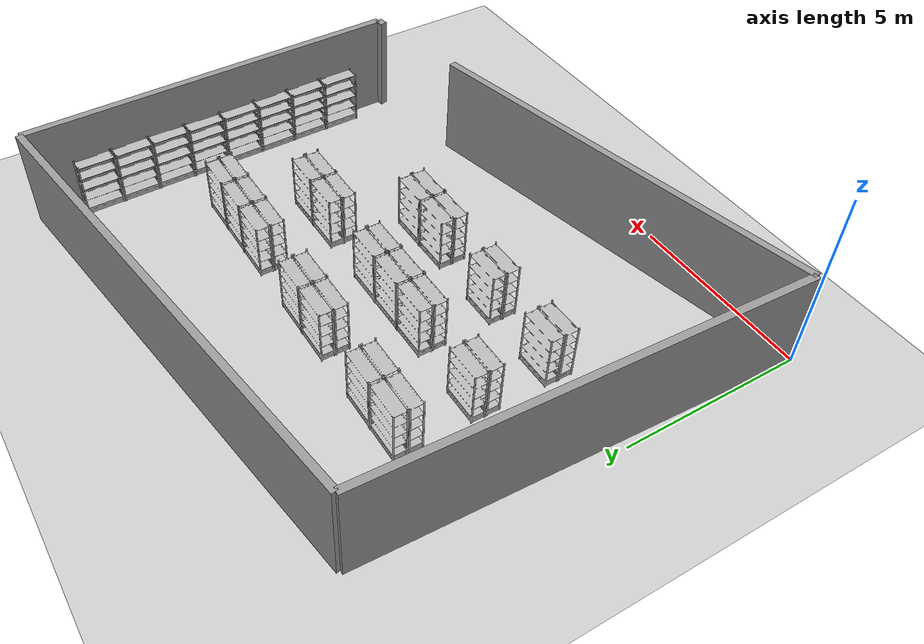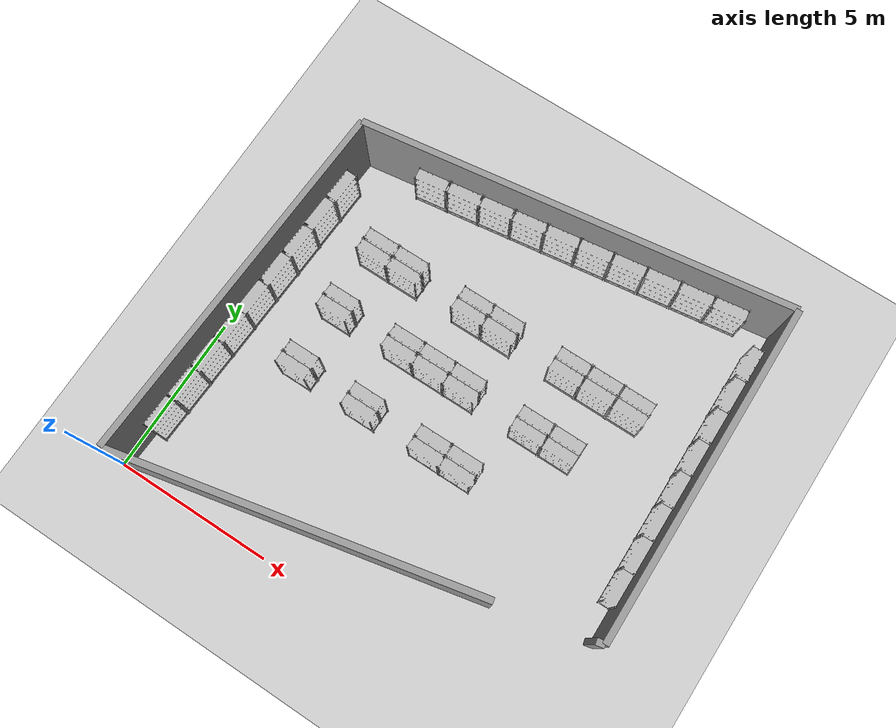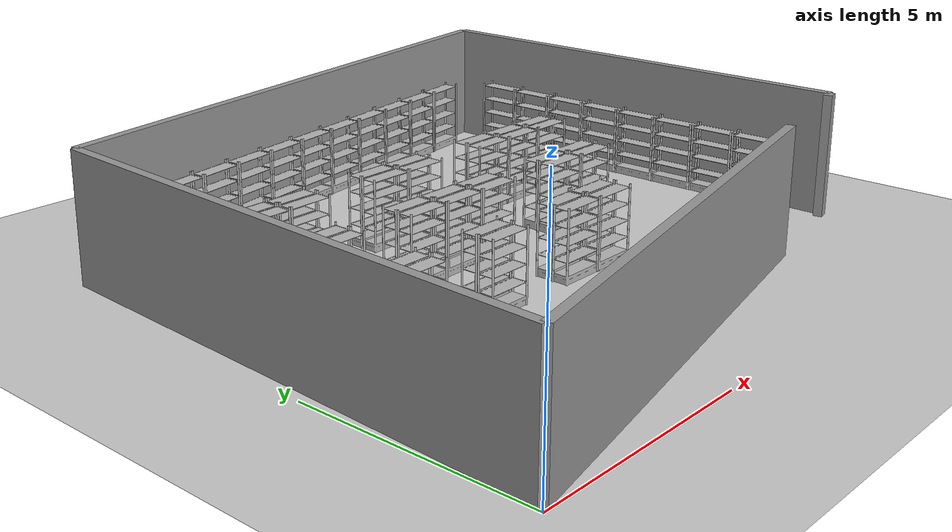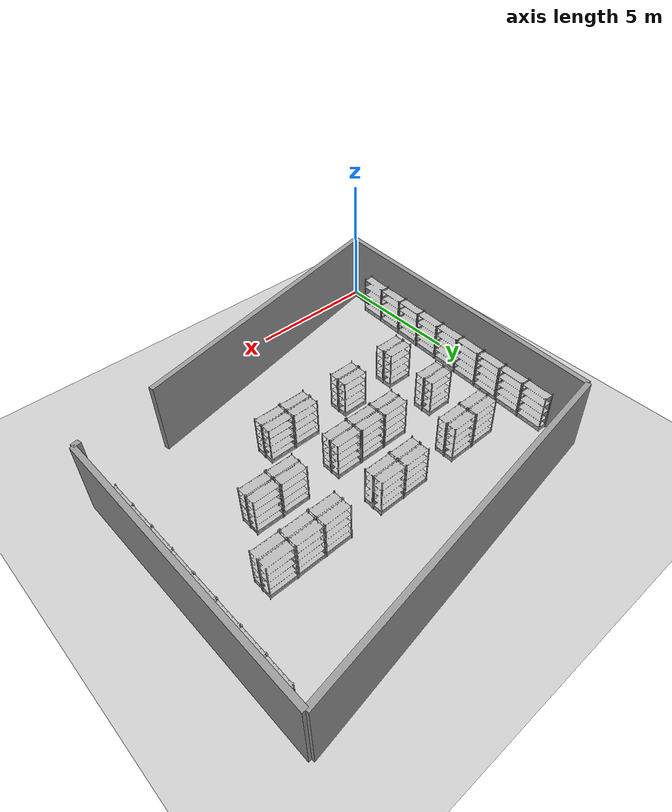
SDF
<sdf version="1.6">
 <world name="default">
  <model name="ground_plane">
   <static>1</static>
   <link name="link">
    <collision name="collision">
     <geometry><plane><normal>0 0 1</normal><size>100 100</size></plane></geometry>
     <surface>
      <contact><collide_bitmask>65535</collide_bitmask></contact>
      <friction><ode><mu>1000</mu><mu2>1000</mu2></ode></friction>
     </surface>
    </collision>
    <visual name="visual">
     <cast_shadows>0</cast_shadows>
     <geometry><plane><normal>0 0 1</normal><size>100 100</size></plane></geometry>
     <material>
      <script><uri>file://media/materials/scripts/gazebo.material</uri><name>Gazebo/Grey</name></script>
     </material>
    </visual>
   </link>
  </model>
  <model name="store_shelf_moduled_0">
   <link name="link">
    <collision name="collision">
     <geometry><mesh><uri>model://store_shelf_moduled/meshes/store_shelf_moduled.dae</uri></mesh></geometry>
    </collision>
    <visual name="visual">
     <geometry><mesh><uri>model://store_shelf_moduled/meshes/store_shelf_moduled.dae</uri></mesh></geometry>
    </visual>
    <inertial>
     <mass>1000</mass>
     <inertia>
      <ixx>840083</ixx>
      <ixy>0</ixy>
      <ixz>0</ixz>
      <iyy>475500</iyy>
      <iyz>0</iyz>
      <izz>1.30208e+06</izz>
     </inertia>
    </inertial>
   </link>
   <static>1</static>
   <pose>14.01001 4.158587 0 0 0 1.58492</pose>
  </model>
  <model name="store_shelf_moduled_1">
   <link name="link">
    <collision name="collision">
     <geometry><mesh><uri>model://store_shelf_moduled/meshes/store_shelf_moduled.dae</uri></mesh></geometry>
    </collision>
    <visual name="visual">
     <geometry><mesh><uri>model://store_shelf_moduled/meshes/store_shelf_moduled.dae</uri></mesh></geometry>
    </visual>
    <inertial>
     <mass>1000</mass>
     <inertia>
      <ixx>840083</ixx>
      <ixy>0</ixy>
      <ixz>0</ixz>
      <iyy>475500</iyy>
      <iyz>0</iyz>
      <izz>1.30208e+06</izz>
     </inertia>
    </inertial>
   </link>
   <static>1</static>
   <pose>14.00001 5.218588 0 0 0 1.58492</pose>
  </model>
  <model name="store_shelf_moduled_2">
   <link name="link">
    <collision name="collision">
     <geometry><mesh><uri>model://store_shelf_moduled/meshes/store_shelf_moduled.dae</uri></mesh></geometry>
    </collision>
    <visual name="visual">
     <geometry><mesh><uri>model://store_shelf_moduled/meshes/store_shelf_moduled.dae</uri></mesh></geometry>
    </visual>
    <inertial>
     <mass>1000</mass>
     <inertia>
      <ixx>840083</ixx>
      <ixy>0</ixy>
      <ixz>0</ixz>
      <iyy>475500</iyy>
      <iyz>0</iyz>
      <izz>1.30208e+06</izz>
     </inertia>
    </inertial>
   </link>
   <static>1</static>
   <pose>13.98001 6.278588 0 0 0 1.58492</pose>
  </model>
  <model name="store_shelf_moduled_3">
   <link name="link">
    <collision name="collision">
     <geometry><mesh><uri>model://store_shelf_moduled/meshes/store_shelf_moduled.dae</uri></mesh></geometry>
    </collision>
    <visual name="visual">
     <geometry><mesh><uri>model://store_shelf_moduled/meshes/store_shelf_moduled.dae</uri></mesh></geometry>
    </visual>
    <inertial>
     <mass>1000</mass>
     <inertia>
      <ixx>840083</ixx>
      <ixy>0</ixy>
      <ixz>0</ixz>
      <iyy>475500</iyy>
      <iyz>0</iyz>
      <izz>1.30208e+06</izz>
     </inertia>
    </inertial>
   </link>
   <static>1</static>
   <pose>13.97001 7.338588 0 0 0 1.58492</pose>
  </model>
  <model name="store_shelf_moduled_4">
   <link name="link">
    <collision name="collision">
     <geometry><mesh><uri>model://store_shelf_moduled/meshes/store_shelf_moduled.dae</uri></mesh></geometry>
    </collision>
    <visual name="visual">
     <geometry><mesh><uri>model://store_shelf_moduled/meshes/store_shelf_moduled.dae</uri></mesh></geometry>
    </visual>
    <inertial>
     <mass>1000</mass>
     <inertia>
      <ixx>840083</ixx>
      <ixy>0</ixy>
      <ixz>0</ixz>
      <iyy>475500</iyy>
      <iyz>0</iyz>
      <izz>1.30208e+06</izz>
     </inertia>
    </inertial>
   </link>
   <static>1</static>
   <pose>13.95001 8.398587 0 0 0 1.58492</pose>
  </model>
  <model name="store_shelf_moduled_5">
   <link name="link">
    <collision name="collision">
     <geometry><mesh><uri>model://store_shelf_moduled/meshes/store_shelf_moduled.dae</uri></mesh></geometry>
    </collision>
    <visual name="visual">
     <geometry><mesh><uri>model://store_shelf_moduled/meshes/store_shelf_moduled.dae</uri></mesh></geometry>
    </visual>
    <inertial>
     <mass>1000</mass>
     <inertia>
      <ixx>840083</ixx>
      <ixy>0</ixy>
      <ixz>0</ixz>
      <iyy>475500</iyy>
      <iyz>0</iyz>
      <izz>1.30208e+06</izz>
     </inertia>
    </inertial>
   </link>
   <static>1</static>
   <pose>13.94001 9.458588 0 0 0 1.58492</pose>
  </model>
  <model name="store_shelf_moduled_6">
   <link name="link">
    <collision name="collision">
     <geometry><mesh><uri>model://store_shelf_moduled/meshes/store_shelf_moduled.dae</uri></mesh></geometry>
    </collision>
    <visual name="visual">
     <geometry><mesh><uri>model://store_shelf_moduled/meshes/store_shelf_moduled.dae</uri></mesh></geometry>
    </visual>
    <inertial>
     <mass>1000</mass>
     <inertia>
      <ixx>840083</ixx>
      <ixy>0</ixy>
      <ixz>0</ixz>
      <iyy>475500</iyy>
      <iyz>0</iyz>
      <izz>1.30208e+06</izz>
     </inertia>
    </inertial>
   </link>
   <static>1</static>
   <pose>13.92001 10.51859 0 0 0 1.58492</pose>
  </model>
  <model name="store_shelf_moduled_7">
   <link name="link">
    <collision name="collision">
     <geometry><mesh><uri>model://store_shelf_moduled/meshes/store_shelf_moduled.dae</uri></mesh></geometry>
    </collision>
    <visual name="visual">
     <geometry><mesh><uri>model://store_shelf_moduled/meshes/store_shelf_moduled.dae</uri></mesh></geometry>
    </visual>
    <inertial>
     <mass>1000</mass>
     <inertia>
      <ixx>840083</ixx>
      <ixy>0</ixy>
      <ixz>0</ixz>
      <iyy>475500</iyy>
      <iyz>0</iyz>
      <izz>1.30208e+06</izz>
     </inertia>
    </inertial>
   </link>
   <static>1</static>
   <pose>13.91001 11.57859 0 0 0 1.58492</pose>
  </model>
  <model name="store_shelf_moduled_8">
   <link name="link">
    <collision name="collision">
     <geometry><mesh><uri>model://store_shelf_moduled/meshes/store_shelf_moduled.dae</uri></mesh></geometry>
    </collision>
    <visual name="visual">
     <geometry><mesh><uri>model://store_shelf_moduled/meshes/store_shelf_moduled.dae</uri></mesh></geometry>
    </visual>
    <inertial>
     <mass>1000</mass>
     <inertia>
      <ixx>840083</ixx>
      <ixy>0</ixy>
      <ixz>0</ixz>
      <iyy>475500</iyy>
      <iyz>0</iyz>
      <izz>1.30208e+06</izz>
     </inertia>
    </inertial>
   </link>
   <static>1</static>
   <pose>12.94407 13.481 0 0 0 -3.000429</pose>
  </model>
  <model name="store_shelf_moduled_9">
   <link name="link">
    <collision name="collision">
     <geometry><mesh><uri>model://store_shelf_moduled/meshes/store_shelf_moduled.dae</uri></mesh></geometry>
    </collision>
    <visual name="visual">
     <geometry><mesh><uri>model://store_shelf_moduled/meshes/store_shelf_moduled.dae</uri></mesh></geometry>
    </visual>
    <inertial>
     <mass>1000</mass>
     <inertia>
      <ixx>840083</ixx>
      <ixy>0</ixy>
      <ixz>0</ixz>
      <iyy>475500</iyy>
      <iyz>0</iyz>
      <izz>1.30208e+06</izz>
     </inertia>
    </inertial>
   </link>
   <static>1</static>
   <pose>11.89407 13.33099 0 0 0 -3.000429</pose>
  </model>
  <model name="store_shelf_moduled_10">
   <link name="link">
    <collision name="collision">
     <geometry><mesh><uri>model://store_shelf_moduled/meshes/store_shelf_moduled.dae</uri></mesh></geometry>
    </collision>
    <visual name="visual">
     <geometry><mesh><uri>model://store_shelf_moduled/meshes/store_shelf_moduled.dae</uri></mesh></geometry>
    </visual>
    <inertial>
     <mass>1000</mass>
     <inertia>
      <ixx>840083</ixx>
      <ixy>0</ixy>
      <ixz>0</ixz>
      <iyy>475500</iyy>
      <iyz>0</iyz>
      <izz>1.30208e+06</izz>
     </inertia>
    </inertial>
   </link>
   <static>1</static>
   <pose>10.84407 13.18099 0 0 0 -3.000429</pose>
  </model>
  <model name="store_shelf_moduled_11">
   <link name="link">
    <collision name="collision">
     <geometry><mesh><uri>model://store_shelf_moduled/meshes/store_shelf_moduled.dae</uri></mesh></geometry>
    </collision>
    <visual name="visual">
     <geometry><mesh><uri>model://store_shelf_moduled/meshes/store_shelf_moduled.dae</uri></mesh></geometry>
    </visual>
    <inertial>
     <mass>1000</mass>
     <inertia>
      <ixx>840083</ixx>
      <ixy>0</ixy>
      <ixz>0</ixz>
      <iyy>475500</iyy>
      <iyz>0</iyz>
      <izz>1.30208e+06</izz>
     </inertia>
    </inertial>
   </link>
   <static>1</static>
   <pose>9.79407 13.03099 0 0 0 -3.000429</pose>
  </model>
  <model name="store_shelf_moduled_12">
   <link name="link">
    <collision name="collision">
     <geometry><mesh><uri>model://store_shelf_moduled/meshes/store_shelf_moduled.dae</uri></mesh></geometry>
    </collision>
    <visual name="visual">
     <geometry><mesh><uri>model://store_shelf_moduled/meshes/store_shelf_moduled.dae</uri></mesh></geometry>
    </visual>
    <inertial>
     <mass>1000</mass>
     <inertia>
      <ixx>840083</ixx>
      <ixy>0</ixy>
      <ixz>0</ixz>
      <iyy>475500</iyy>
      <iyz>0</iyz>
      <izz>1.30208e+06</izz>
     </inertia>
    </inertial>
   </link>
   <static>1</static>
   <pose>8.74407 12.88099 0 0 0 -3.000429</pose>
  </model>
  <model name="store_shelf_moduled_13">
   <link name="link">
    <collision name="collision">
     <geometry><mesh><uri>model://store_shelf_moduled/meshes/store_shelf_moduled.dae</uri></mesh></geometry>
    </collision>
    <visual name="visual">
     <geometry><mesh><uri>model://store_shelf_moduled/meshes/store_shelf_moduled.dae</uri></mesh></geometry>
    </visual>
    <inertial>
     <mass>1000</mass>
     <inertia>
      <ixx>840083</ixx>
      <ixy>0</ixy>
      <ixz>0</ixz>
      <iyy>475500</iyy>
      <iyz>0</iyz>
      <izz>1.30208e+06</izz>
     </inertia>
    </inertial>
   </link>
   <static>1</static>
   <pose>7.69407 12.731 0 0 0 -3.000429</pose>
  </model>
  <model name="store_shelf_moduled_14">
   <link name="link">
    <collision name="collision">
     <geometry><mesh><uri>model://store_shelf_moduled/meshes/store_shelf_moduled.dae</uri></mesh></geometry>
    </collision>
    <visual name="visual">
     <geometry><mesh><uri>model://store_shelf_moduled/meshes/store_shelf_moduled.dae</uri></mesh></geometry>
    </visual>
    <inertial>
     <mass>1000</mass>
     <inertia>
      <ixx>840083</ixx>
      <ixy>0</ixy>
      <ixz>0</ixz>
      <iyy>475500</iyy>
      <iyz>0</iyz>
      <izz>1.30208e+06</izz>
     </inertia>
    </inertial>
   </link>
   <static>1</static>
   <pose>6.64407 12.58099 0 0 0 -3.000429</pose>
  </model>
  <model name="store_shelf_moduled_15">
   <link name="link">
    <collision name="collision">
     <geometry><mesh><uri>model://store_shelf_moduled/meshes/store_shelf_moduled.dae</uri></mesh></geometry>
    </collision>
    <visual name="visual">
     <geometry><mesh><uri>model://store_shelf_moduled/meshes/store_shelf_moduled.dae</uri></mesh></geometry>
    </visual>
    <inertial>
     <mass>1000</mass>
     <inertia>
      <ixx>840083</ixx>
      <ixy>0</ixy>
      <ixz>0</ixz>
      <iyy>475500</iyy>
      <iyz>0</iyz>
      <izz>1.30208e+06</izz>
     </inertia>
    </inertial>
   </link>
   <static>1</static>
   <pose>5.59407 12.43099 0 0 0 -3.000429</pose>
  </model>
  <model name="store_shelf_moduled_16">
   <link name="link">
    <collision name="collision">
     <geometry><mesh><uri>model://store_shelf_moduled/meshes/store_shelf_moduled.dae</uri></mesh></geometry>
    </collision>
    <visual name="visual">
     <geometry><mesh><uri>model://store_shelf_moduled/meshes/store_shelf_moduled.dae</uri></mesh></geometry>
    </visual>
    <inertial>
     <mass>1000</mass>
     <inertia>
      <ixx>840083</ixx>
      <ixy>0</ixy>
      <ixz>0</ixz>
      <iyy>475500</iyy>
      <iyz>0</iyz>
      <izz>1.30208e+06</izz>
     </inertia>
    </inertial>
   </link>
   <static>1</static>
   <pose>4.544069 12.28099 0 0 0 -3.000429</pose>
  </model>
  <model name="store_shelf_moduled_17">
   <link name="link">
    <collision name="collision">
     <geometry><mesh><uri>model://store_shelf_moduled/meshes/store_shelf_moduled.dae</uri></mesh></geometry>
    </collision>
    <visual name="visual">
     <geometry><mesh><uri>model://store_shelf_moduled/meshes/store_shelf_moduled.dae</uri></mesh></geometry>
    </visual>
    <inertial>
     <mass>1000</mass>
     <inertia>
      <ixx>840083</ixx>
      <ixy>0</ixy>
      <ixz>0</ixz>
      <iyy>475500</iyy>
      <iyz>0</iyz>
      <izz>1.30208e+06</izz>
     </inertia>
    </inertial>
   </link>
   <static>1</static>
   <pose>3.49407 12.13099 0 0 0 -3.000429</pose>
  </model>
  <model name="store_shelf_moduled_18">
   <link name="link">
    <collision name="collision">
     <geometry><mesh><uri>model://store_shelf_moduled/meshes/store_shelf_moduled.dae</uri></mesh></geometry>
    </collision>
    <visual name="visual">
     <geometry><mesh><uri>model://store_shelf_moduled/meshes/store_shelf_moduled.dae</uri></mesh></geometry>
    </visual>
    <inertial>
     <mass>1000</mass>
     <inertia>
      <ixx>840083</ixx>
      <ixy>0</ixy>
      <ixz>0</ixz>
      <iyy>475500</iyy>
      <iyz>0</iyz>
      <izz>1.30208e+06</izz>
     </inertia>
    </inertial>
   </link>
   <static>1</static>
   <pose>0.6599056 10.76566 0 0 0 -1.614247</pose>
  </model>
  <model name="store_shelf_moduled_19">
   <link name="link">
    <collision name="collision">
     <geometry><mesh><uri>model://store_shelf_moduled/meshes/store_shelf_moduled.dae</uri></mesh></geometry>
    </collision>
    <visual name="visual">
     <geometry><mesh><uri>model://store_shelf_moduled/meshes/store_shelf_moduled.dae</uri></mesh></geometry>
    </visual>
    <inertial>
     <mass>1000</mass>
     <inertia>
      <ixx>840083</ixx>
      <ixy>0</ixy>
      <ixz>0</ixz>
      <iyy>475500</iyy>
      <iyz>0</iyz>
      <izz>1.30208e+06</izz>
     </inertia>
    </inertial>
   </link>
   <static>1</static>
   <pose>0.6099056 9.705656 0 0 0 -1.614247</pose>
  </model>
  <model name="store_shelf_moduled_20">
   <link name="link">
    <collision name="collision">
     <geometry><mesh><uri>model://store_shelf_moduled/meshes/store_shelf_moduled.dae</uri></mesh></geometry>
    </collision>
    <visual name="visual">
     <geometry><mesh><uri>model://store_shelf_moduled/meshes/store_shelf_moduled.dae</uri></mesh></geometry>
    </visual>
    <inertial>
     <mass>1000</mass>
     <inertia>
      <ixx>840083</ixx>
      <ixy>0</ixy>
      <ixz>0</ixz>
      <iyy>475500</iyy>
      <iyz>0</iyz>
      <izz>1.30208e+06</izz>
     </inertia>
    </inertial>
   </link>
   <static>1</static>
   <pose>0.5699056 8.645657 0 0 0 -1.614247</pose>
  </model>
  <model name="store_shelf_moduled_21">
   <link name="link">
    <collision name="collision">
     <geometry><mesh><uri>model://store_shelf_moduled/meshes/store_shelf_moduled.dae</uri></mesh></geometry>
    </collision>
    <visual name="visual">
     <geometry><mesh><uri>model://store_shelf_moduled/meshes/store_shelf_moduled.dae</uri></mesh></geometry>
    </visual>
    <inertial>
     <mass>1000</mass>
     <inertia>
      <ixx>840083</ixx>
      <ixy>0</ixy>
      <ixz>0</ixz>
      <iyy>475500</iyy>
      <iyz>0</iyz>
      <izz>1.30208e+06</izz>
     </inertia>
    </inertial>
   </link>
   <static>1</static>
   <pose>0.5199056 7.585656 0 0 0 -1.614247</pose>
  </model>
  <model name="store_shelf_moduled_22">
   <link name="link">
    <collision name="collision">
     <geometry><mesh><uri>model://store_shelf_moduled/meshes/store_shelf_moduled.dae</uri></mesh></geometry>
    </collision>
    <visual name="visual">
     <geometry><mesh><uri>model://store_shelf_moduled/meshes/store_shelf_moduled.dae</uri></mesh></geometry>
    </visual>
    <inertial>
     <mass>1000</mass>
     <inertia>
      <ixx>840083</ixx>
      <ixy>0</ixy>
      <ixz>0</ixz>
      <iyy>475500</iyy>
      <iyz>0</iyz>
      <izz>1.30208e+06</izz>
     </inertia>
    </inertial>
   </link>
   <static>1</static>
   <pose>0.4699056 6.525656 0 0 0 -1.614247</pose>
  </model>
  <model name="store_shelf_moduled_23">
   <link name="link">
    <collision name="collision">
     <geometry><mesh><uri>model://store_shelf_moduled/meshes/store_shelf_moduled.dae</uri></mesh></geometry>
    </collision>
    <visual name="visual">
     <geometry><mesh><uri>model://store_shelf_moduled/meshes/store_shelf_moduled.dae</uri></mesh></geometry>
    </visual>
    <inertial>
     <mass>1000</mass>
     <inertia>
      <ixx>840083</ixx>
      <ixy>0</ixy>
      <ixz>0</ixz>
      <iyy>475500</iyy>
      <iyz>0</iyz>
      <izz>1.30208e+06</izz>
     </inertia>
    </inertial>
   </link>
   <static>1</static>
   <pose>0.4299056 5.465656 0 0 0 -1.614247</pose>
  </model>
  <model name="store_shelf_moduled_24">
   <link name="link">
    <collision name="collision">
     <geometry><mesh><uri>model://store_shelf_moduled/meshes/store_shelf_moduled.dae</uri></mesh></geometry>
    </collision>
    <visual name="visual">
     <geometry><mesh><uri>model://store_shelf_moduled/meshes/store_shelf_moduled.dae</uri></mesh></geometry>
    </visual>
    <inertial>
     <mass>1000</mass>
     <inertia>
      <ixx>840083</ixx>
      <ixy>0</ixy>
      <ixz>0</ixz>
      <iyy>475500</iyy>
      <iyz>0</iyz>
      <izz>1.30208e+06</izz>
     </inertia>
    </inertial>
   </link>
   <static>1</static>
   <pose>0.3799056 4.405656 0 0 0 -1.614247</pose>
  </model>
  <model name="store_shelf_moduled_25">
   <link name="link">
    <collision name="collision">
     <geometry><mesh><uri>model://store_shelf_moduled/meshes/store_shelf_moduled.dae</uri></mesh></geometry>
    </collision>
    <visual name="visual">
     <geometry><mesh><uri>model://store_shelf_moduled/meshes/store_shelf_moduled.dae</uri></mesh></geometry>
    </visual>
    <inertial>
     <mass>1000</mass>
     <inertia>
      <ixx>840083</ixx>
      <ixy>0</ixy>
      <ixz>0</ixz>
      <iyy>475500</iyy>
      <iyz>0</iyz>
      <izz>1.30208e+06</izz>
     </inertia>
    </inertial>
   </link>
   <static>1</static>
   <pose>0.3399056 3.345656 0 0 0 -1.614247</pose>
  </model>
  <model name="store_shelf_moduled_26">
   <link name="link">
    <collision name="collision">
     <geometry><mesh><uri>model://store_shelf_moduled/meshes/store_shelf_moduled.dae</uri></mesh></geometry>
    </collision>
    <visual name="visual">
     <geometry><mesh><uri>model://store_shelf_moduled/meshes/store_shelf_moduled.dae</uri></mesh></geometry>
    </visual>
    <inertial>
     <mass>1000</mass>
     <inertia>
      <ixx>840083</ixx>
      <ixy>0</ixy>
      <ixz>0</ixz>
      <iyy>475500</iyy>
      <iyz>0</iyz>
      <izz>1.30208e+06</izz>
     </inertia>
    </inertial>
   </link>
   <static>1</static>
   <pose>0.2899056 2.285656 0 0 0 -1.614247</pose>
  </model>
  <model name="store_shelf_moduled_27">
   <link name="link">
    <collision name="collision">
     <geometry><mesh><uri>model://store_shelf_moduled/meshes/store_shelf_moduled.dae</uri></mesh></geometry>
    </collision>
    <visual name="visual">
     <geometry><mesh><uri>model://store_shelf_moduled/meshes/store_shelf_moduled.dae</uri></mesh></geometry>
    </visual>
    <inertial>
     <mass>1000</mass>
     <inertia>
      <ixx>840083</ixx>
      <ixy>0</ixy>
      <ixz>0</ixz>
      <iyy>475500</iyy>
      <iyz>0</iyz>
      <izz>1.30208e+06</izz>
     </inertia>
    </inertial>
   </link>
   <static>1</static>
   <pose>4.54 5.14 0 0 0 0</pose>
  </model>
  <model name="store_shelf_moduled_28">
   <link name="link">
    <collision name="collision">
     <geometry><mesh><uri>model://store_shelf_moduled/meshes/store_shelf_moduled.dae</uri></mesh></geometry>
    </collision>
    <visual name="visual">
     <geometry><mesh><uri>model://store_shelf_moduled/meshes/store_shelf_moduled.dae</uri></mesh></geometry>
    </visual>
    <inertial>
     <mass>1000</mass>
     <inertia>
      <ixx>840083</ixx>
      <ixy>0</ixy>
      <ixz>0</ixz>
      <iyy>475500</iyy>
      <iyz>0</iyz>
      <izz>1.30208e+06</izz>
     </inertia>
    </inertial>
   </link>
   <static>1</static>
   <pose>5.6 5.14 0 0 0 -3.141593</pose>
  </model>
  <model name="store_shelf_moduled_29">
   <link name="link">
    <collision name="collision">
     <geometry><mesh><uri>model://store_shelf_moduled/meshes/store_shelf_moduled.dae</uri></mesh></geometry>
    </collision>
    <visual name="visual">
     <geometry><mesh><uri>model://store_shelf_moduled/meshes/store_shelf_moduled.dae</uri></mesh></geometry>
    </visual>
    <inertial>
     <mass>1000</mass>
     <inertia>
      <ixx>840083</ixx>
      <ixy>0</ixy>
      <ixz>0</ixz>
      <iyy>475500</iyy>
      <iyz>0</iyz>
      <izz>1.30208e+06</izz>
     </inertia>
    </inertial>
   </link>
   <static>1</static>
   <pose>8.92 7.18 0 0 0 0</pose>
  </model>
  <model name="store_shelf_moduled_30">
   <link name="link">
    <collision name="collision">
     <geometry><mesh><uri>model://store_shelf_moduled/meshes/store_shelf_moduled.dae</uri></mesh></geometry>
    </collision>
    <visual name="visual">
     <geometry><mesh><uri>model://store_shelf_moduled/meshes/store_shelf_moduled.dae</uri></mesh></geometry>
    </visual>
    <inertial>
     <mass>1000</mass>
     <inertia>
      <ixx>840083</ixx>
      <ixy>0</ixy>
      <ixz>0</ixz>
      <iyy>475500</iyy>
      <iyz>0</iyz>
      <izz>1.30208e+06</izz>
     </inertia>
    </inertial>
   </link>
   <static>1</static>
   <pose>9.98 7.18 0 0 0 -3.141593</pose>
  </model>
  <model name="store_shelf_moduled_31">
   <link name="link">
    <collision name="collision">
     <geometry><mesh><uri>model://store_shelf_moduled/meshes/store_shelf_moduled.dae</uri></mesh></geometry>
    </collision>
    <visual name="visual">
     <geometry><mesh><uri>model://store_shelf_moduled/meshes/store_shelf_moduled.dae</uri></mesh></geometry>
    </visual>
    <inertial>
     <mass>1000</mass>
     <inertia>
      <ixx>840083</ixx>
      <ixy>0</ixy>
      <ixz>0</ixz>
      <iyy>475500</iyy>
      <iyz>0</iyz>
      <izz>1.30208e+06</izz>
     </inertia>
    </inertial>
   </link>
   <static>1</static>
   <pose>9.98 7.18 0 0 0 0</pose>
  </model>
  <model name="store_shelf_moduled_32">
   <link name="link">
    <collision name="collision">
     <geometry><mesh><uri>model://store_shelf_moduled/meshes/store_shelf_moduled.dae</uri></mesh></geometry>
    </collision>
    <visual name="visual">
     <geometry><mesh><uri>model://store_shelf_moduled/meshes/store_shelf_moduled.dae</uri></mesh></geometry>
    </visual>
    <inertial>
     <mass>1000</mass>
     <inertia>
      <ixx>840083</ixx>
      <ixy>0</ixy>
      <ixz>0</ixz>
      <iyy>475500</iyy>
      <iyz>0</iyz>
      <izz>1.30208e+06</izz>
     </inertia>
    </inertial>
   </link>
   <static>1</static>
   <pose>11.04 7.18 0 0 0 -3.141593</pose>
  </model>
  <model name="store_shelf_moduled_33">
   <link name="link">
    <collision name="collision">
     <geometry><mesh><uri>model://store_shelf_moduled/meshes/store_shelf_moduled.dae</uri></mesh></geometry>
    </collision>
    <visual name="visual">
     <geometry><mesh><uri>model://store_shelf_moduled/meshes/store_shelf_moduled.dae</uri></mesh></geometry>
    </visual>
    <inertial>
     <mass>1000</mass>
     <inertia>
      <ixx>840083</ixx>
      <ixy>0</ixy>
      <ixz>0</ixz>
      <iyy>475500</iyy>
      <iyz>0</iyz>
      <izz>1.30208e+06</izz>
     </inertia>
    </inertial>
   </link>
   <static>1</static>
   <pose>2.28 5.14 0 0 0 0</pose>
  </model>
  <model name="store_shelf_moduled_34">
   <link name="link">
    <collision name="collision">
     <geometry><mesh><uri>model://store_shelf_moduled/meshes/store_shelf_moduled.dae</uri></mesh></geometry>
    </collision>
    <visual name="visual">
     <geometry><mesh><uri>model://store_shelf_moduled/meshes/store_shelf_moduled.dae</uri></mesh></geometry>
    </visual>
    <inertial>
     <mass>1000</mass>
     <inertia>
      <ixx>840083</ixx>
      <ixy>0</ixy>
      <ixz>0</ixz>
      <iyy>475500</iyy>
      <iyz>0</iyz>
      <izz>1.30208e+06</izz>
     </inertia>
    </inertial>
   </link>
   <static>1</static>
   <pose>3.34 5.14 0 0 0 -3.141593</pose>
  </model>
  <model name="store_shelf_moduled_35">
   <link name="link">
    <collision name="collision">
     <geometry><mesh><uri>model://store_shelf_moduled/meshes/store_shelf_moduled.dae</uri></mesh></geometry>
    </collision>
    <visual name="visual">
     <geometry><mesh><uri>model://store_shelf_moduled/meshes/store_shelf_moduled.dae</uri></mesh></geometry>
    </visual>
    <inertial>
     <mass>1000</mass>
     <inertia>
      <ixx>840083</ixx>
      <ixy>0</ixy>
      <ixz>0</ixz>
      <iyy>475500</iyy>
      <iyz>0</iyz>
      <izz>1.30208e+06</izz>
     </inertia>
    </inertial>
   </link>
   <static>1</static>
   <pose>2.28 9.22 0 0 0 0</pose>
  </model>
  <model name="store_shelf_moduled_36">
   <link name="link">
    <collision name="collision">
     <geometry><mesh><uri>model://store_shelf_moduled/meshes/store_shelf_moduled.dae</uri></mesh></geometry>
    </collision>
    <visual name="visual">
     <geometry><mesh><uri>model://store_shelf_moduled/meshes/store_shelf_moduled.dae</uri></mesh></geometry>
    </visual>
    <inertial>
     <mass>1000</mass>
     <inertia>
      <ixx>840083</ixx>
      <ixy>0</ixy>
      <ixz>0</ixz>
      <iyy>475500</iyy>
      <iyz>0</iyz>
      <izz>1.30208e+06</izz>
     </inertia>
    </inertial>
   </link>
   <static>1</static>
   <pose>3.34 9.22 0 0 0 -3.141593</pose>
  </model>
  <model name="store_shelf_moduled_37">
   <link name="link">
    <collision name="collision">
     <geometry><mesh><uri>model://store_shelf_moduled/meshes/store_shelf_moduled.dae</uri></mesh></geometry>
    </collision>
    <visual name="visual">
     <geometry><mesh><uri>model://store_shelf_moduled/meshes/store_shelf_moduled.dae</uri></mesh></geometry>
    </visual>
    <inertial>
     <mass>1000</mass>
     <inertia>
      <ixx>840083</ixx>
      <ixy>0</ixy>
      <ixz>0</ixz>
      <iyy>475500</iyy>
      <iyz>0</iyz>
      <izz>1.30208e+06</izz>
     </inertia>
    </inertial>
   </link>
   <static>1</static>
   <pose>3.34 9.22 0 0 0 0</pose>
  </model>
  <model name="store_shelf_moduled_38">
   <link name="link">
    <collision name="collision">
     <geometry><mesh><uri>model://store_shelf_moduled/meshes/store_shelf_moduled.dae</uri></mesh></geometry>
    </collision>
    <visual name="visual">
     <geometry><mesh><uri>model://store_shelf_moduled/meshes/store_shelf_moduled.dae</uri></mesh></geometry>
    </visual>
    <inertial>
     <mass>1000</mass>
     <inertia>
      <ixx>840083</ixx>
      <ixy>0</ixy>
      <ixz>0</ixz>
      <iyy>475500</iyy>
      <iyz>0</iyz>
      <izz>1.30208e+06</izz>
     </inertia>
    </inertial>
   </link>
   <static>1</static>
   <pose>4.4 9.22 0 0 0 -3.141593</pose>
  </model>
  <model name="store_shelf_moduled_39">
   <link name="link">
    <collision name="collision">
     <geometry><mesh><uri>model://store_shelf_moduled/meshes/store_shelf_moduled.dae</uri></mesh></geometry>
    </collision>
    <visual name="visual">
     <geometry><mesh><uri>model://store_shelf_moduled/meshes/store_shelf_moduled.dae</uri></mesh></geometry>
    </visual>
    <inertial>
     <mass>1000</mass>
     <inertia>
      <ixx>840083</ixx>
      <ixy>0</ixy>
      <ixz>0</ixz>
      <iyy>475500</iyy>
      <iyz>0</iyz>
      <izz>1.30208e+06</izz>
     </inertia>
    </inertial>
   </link>
   <static>1</static>
   <pose>8.92 9.22 0 0 0 0</pose>
  </model>
  <model name="store_shelf_moduled_40">
   <link name="link">
    <collision name="collision">
     <geometry><mesh><uri>model://store_shelf_moduled/meshes/store_shelf_moduled.dae</uri></mesh></geometry>
    </collision>
    <visual name="visual">
     <geometry><mesh><uri>model://store_shelf_moduled/meshes/store_shelf_moduled.dae</uri></mesh></geometry>
    </visual>
    <inertial>
     <mass>1000</mass>
     <inertia>
      <ixx>840083</ixx>
      <ixy>0</ixy>
      <ixz>0</ixz>
      <iyy>475500</iyy>
      <iyz>0</iyz>
      <izz>1.30208e+06</izz>
     </inertia>
    </inertial>
   </link>
   <static>1</static>
   <pose>9.98 9.22 0 0 0 -3.141593</pose>
  </model>
  <model name="store_shelf_moduled_41">
   <link name="link">
    <collision name="collision">
     <geometry><mesh><uri>model://store_shelf_moduled/meshes/store_shelf_moduled.dae</uri></mesh></geometry>
    </collision>
    <visual name="visual">
     <geometry><mesh><uri>model://store_shelf_moduled/meshes/store_shelf_moduled.dae</uri></mesh></geometry>
    </visual>
    <inertial>
     <mass>1000</mass>
     <inertia>
      <ixx>840083</ixx>
      <ixy>0</ixy>
      <ixz>0</ixz>
      <iyy>475500</iyy>
      <iyz>0</iyz>
      <izz>1.30208e+06</izz>
     </inertia>
    </inertial>
   </link>
   <static>1</static>
   <pose>9.98 9.22 0 0 0 0</pose>
  </model>
  <model name="store_shelf_moduled_42">
   <link name="link">
    <collision name="collision">
     <geometry><mesh><uri>model://store_shelf_moduled/meshes/store_shelf_moduled.dae</uri></mesh></geometry>
    </collision>
    <visual name="visual">
     <geometry><mesh><uri>model://store_shelf_moduled/meshes/store_shelf_moduled.dae</uri></mesh></geometry>
    </visual>
    <inertial>
     <mass>1000</mass>
     <inertia>
      <ixx>840083</ixx>
      <ixy>0</ixy>
      <ixz>0</ixz>
      <iyy>475500</iyy>
      <iyz>0</iyz>
      <izz>1.30208e+06</izz>
     </inertia>
    </inertial>
   </link>
   <static>1</static>
   <pose>11.04 9.22 0 0 0 -3.141593</pose>
  </model>
  <model name="store_shelf_moduled_43">
   <link name="link">
    <collision name="collision">
     <geometry><mesh><uri>model://store_shelf_moduled/meshes/store_shelf_moduled.dae</uri></mesh></geometry>
    </collision>
    <visual name="visual">
     <geometry><mesh><uri>model://store_shelf_moduled/meshes/store_shelf_moduled.dae</uri></mesh></geometry>
    </visual>
    <inertial>
     <mass>1000</mass>
     <inertia>
      <ixx>840083</ixx>
      <ixy>0</ixy>
      <ixz>0</ixz>
      <iyy>475500</iyy>
      <iyz>0</iyz>
      <izz>1.30208e+06</izz>
     </inertia>
    </inertial>
   </link>
   <static>1</static>
   <pose>11.04 9.22 0 0 0 0</pose>
  </model>
  <model name="store_shelf_moduled_44">
   <link name="link">
    <collision name="collision">
     <geometry><mesh><uri>model://store_shelf_moduled/meshes/store_shelf_moduled.dae</uri></mesh></geometry>
    </collision>
    <visual name="visual">
     <geometry><mesh><uri>model://store_shelf_moduled/meshes/store_shelf_moduled.dae</uri></mesh></geometry>
    </visual>
    <inertial>
     <mass>1000</mass>
     <inertia>
      <ixx>840083</ixx>
      <ixy>0</ixy>
      <ixz>0</ixz>
      <iyy>475500</iyy>
      <iyz>0</iyz>
      <izz>1.30208e+06</izz>
     </inertia>
    </inertial>
   </link>
   <static>1</static>
   <pose>12.1 9.22 0 0 0 -3.141593</pose>
  </model>
  <model name="store_shelf_moduled_45">
   <link name="link">
    <collision name="collision">
     <geometry><mesh><uri>model://store_shelf_moduled/meshes/store_shelf_moduled.dae</uri></mesh></geometry>
    </collision>
    <visual name="visual">
     <geometry><mesh><uri>model://store_shelf_moduled/meshes/store_shelf_moduled.dae</uri></mesh></geometry>
    </visual>
    <inertial>
     <mass>1000</mass>
     <inertia>
      <ixx>840083</ixx>
      <ixy>0</ixy>
      <ixz>0</ixz>
      <iyy>475500</iyy>
      <iyz>0</iyz>
      <izz>1.30208e+06</izz>
     </inertia>
    </inertial>
   </link>
   <static>1</static>
   <pose>6.8 5.14 0 0 0 0</pose>
  </model>
  <model name="store_shelf_moduled_46">
   <link name="link">
    <collision name="collision">
     <geometry><mesh><uri>model://store_shelf_moduled/meshes/store_shelf_moduled.dae</uri></mesh></geometry>
    </collision>
    <visual name="visual">
     <geometry><mesh><uri>model://store_shelf_moduled/meshes/store_shelf_moduled.dae</uri></mesh></geometry>
    </visual>
    <inertial>
     <mass>1000</mass>
     <inertia>
      <ixx>840083</ixx>
      <ixy>0</ixy>
      <ixz>0</ixz>
      <iyy>475500</iyy>
      <iyz>0</iyz>
      <izz>1.30208e+06</izz>
     </inertia>
    </inertial>
   </link>
   <static>1</static>
   <pose>7.86 5.14 0 0 0 -3.141593</pose>
  </model>
  <model name="store_shelf_moduled_47">
   <link name="link">
    <collision name="collision">
     <geometry><mesh><uri>model://store_shelf_moduled/meshes/store_shelf_moduled.dae</uri></mesh></geometry>
    </collision>
    <visual name="visual">
     <geometry><mesh><uri>model://store_shelf_moduled/meshes/store_shelf_moduled.dae</uri></mesh></geometry>
    </visual>
    <inertial>
     <mass>1000</mass>
     <inertia>
      <ixx>840083</ixx>
      <ixy>0</ixy>
      <ixz>0</ixz>
      <iyy>475500</iyy>
      <iyz>0</iyz>
      <izz>1.30208e+06</izz>
     </inertia>
    </inertial>
   </link>
   <static>1</static>
   <pose>7.86 5.14 0 0 0 0</pose>
  </model>
  <model name="store_shelf_moduled_48">
   <link name="link">
    <collision name="collision">
     <geometry><mesh><uri>model://store_shelf_moduled/meshes/store_shelf_moduled.dae</uri></mesh></geometry>
    </collision>
    <visual name="visual">
     <geometry><mesh><uri>model://store_shelf_moduled/meshes/store_shelf_moduled.dae</uri></mesh></geometry>
    </visual>
    <inertial>
     <mass>1000</mass>
     <inertia>
      <ixx>840083</ixx>
      <ixy>0</ixy>
      <ixz>0</ixz>
      <iyy>475500</iyy>
      <iyz>0</iyz>
      <izz>1.30208e+06</izz>
     </inertia>
    </inertial>
   </link>
   <static>1</static>
   <pose>8.92 5.14 0 0 0 -3.141593</pose>
  </model>
  <model name="store_shelf_moduled_49">
   <link name="link">
    <collision name="collision">
     <geometry><mesh><uri>model://store_shelf_moduled/meshes/store_shelf_moduled.dae</uri></mesh></geometry>
    </collision>
    <visual name="visual">
     <geometry><mesh><uri>model://store_shelf_moduled/meshes/store_shelf_moduled.dae</uri></mesh></geometry>
    </visual>
    <inertial>
     <mass>1000</mass>
     <inertia>
      <ixx>840083</ixx>
      <ixy>0</ixy>
      <ixz>0</ixz>
      <iyy>475500</iyy>
      <iyz>0</iyz>
      <izz>1.30208e+06</izz>
     </inertia>
    </inertial>
   </link>
   <static>1</static>
   <pose>4.54 7.18 0 0 0 0</pose>
  </model>
  <model name="store_shelf_moduled_50">
   <link name="link">
    <collision name="collision">
     <geometry><mesh><uri>model://store_shelf_moduled/meshes/store_shelf_moduled.dae</uri></mesh></geometry>
    </collision>
    <visual name="visual">
     <geometry><mesh><uri>model://store_shelf_moduled/meshes/store_shelf_moduled.dae</uri></mesh></geometry>
    </visual>
    <inertial>
     <mass>1000</mass>
     <inertia>
      <ixx>840083</ixx>
      <ixy>0</ixy>
      <ixz>0</ixz>
      <iyy>475500</iyy>
      <iyz>0</iyz>
      <izz>1.30208e+06</izz>
     </inertia>
    </inertial>
   </link>
   <static>1</static>
   <pose>5.6 7.18 0 0 0 -3.141593</pose>
  </model>
  <model name="store_shelf_moduled_51">
   <link name="link">
    <collision name="collision">
     <geometry><mesh><uri>model://store_shelf_moduled/meshes/store_shelf_moduled.dae</uri></mesh></geometry>
    </collision>
    <visual name="visual">
     <geometry><mesh><uri>model://store_shelf_moduled/meshes/store_shelf_moduled.dae</uri></mesh></geometry>
    </visual>
    <inertial>
     <mass>1000</mass>
     <inertia>
      <ixx>840083</ixx>
      <ixy>0</ixy>
      <ixz>0</ixz>
      <iyy>475500</iyy>
      <iyz>0</iyz>
      <izz>1.30208e+06</izz>
     </inertia>
    </inertial>
   </link>
   <static>1</static>
   <pose>5.6 7.18 0 0 0 0</pose>
  </model>
  <model name="store_shelf_moduled_52">
   <link name="link">
    <collision name="collision">
     <geometry><mesh><uri>model://store_shelf_moduled/meshes/store_shelf_moduled.dae</uri></mesh></geometry>
    </collision>
    <visual name="visual">
     <geometry><mesh><uri>model://store_shelf_moduled/meshes/store_shelf_moduled.dae</uri></mesh></geometry>
    </visual>
    <inertial>
     <mass>1000</mass>
     <inertia>
      <ixx>840083</ixx>
      <ixy>0</ixy>
      <ixz>0</ixz>
      <iyy>475500</iyy>
      <iyz>0</iyz>
      <izz>1.30208e+06</izz>
     </inertia>
    </inertial>
   </link>
   <static>1</static>
   <pose>6.66 7.18 0 0 0 -3.141593</pose>
  </model>
  <model name="store_shelf_moduled_53">
   <link name="link">
    <collision name="collision">
     <geometry><mesh><uri>model://store_shelf_moduled/meshes/store_shelf_moduled.dae</uri></mesh></geometry>
    </collision>
    <visual name="visual">
     <geometry><mesh><uri>model://store_shelf_moduled/meshes/store_shelf_moduled.dae</uri></mesh></geometry>
    </visual>
    <inertial>
     <mass>1000</mass>
     <inertia>
      <ixx>840083</ixx>
      <ixy>0</ixy>
      <ixz>0</ixz>
      <iyy>475500</iyy>
      <iyz>0</iyz>
      <izz>1.30208e+06</izz>
     </inertia>
    </inertial>
   </link>
   <static>1</static>
   <pose>6.66 7.18 0 0 0 0</pose>
  </model>
  <model name="store_shelf_moduled_54">
   <link name="link">
    <collision name="collision">
     <geometry><mesh><uri>model://store_shelf_moduled/meshes/store_shelf_moduled.dae</uri></mesh></geometry>
    </collision>
    <visual name="visual">
     <geometry><mesh><uri>model://store_shelf_moduled/meshes/store_shelf_moduled.dae</uri></mesh></geometry>
    </visual>
    <inertial>
     <mass>1000</mass>
     <inertia>
      <ixx>840083</ixx>
      <ixy>0</ixy>
      <ixz>0</ixz>
      <iyy>475500</iyy>
      <iyz>0</iyz>
      <izz>1.30208e+06</izz>
     </inertia>
    </inertial>
   </link>
   <static>1</static>
   <pose>7.72 7.18 0 0 0 -3.141593</pose>
  </model>
  <model name="store_shelf_moduled_55">
   <link name="link">
    <collision name="collision">
     <geometry><mesh><uri>model://store_shelf_moduled/meshes/store_shelf_moduled.dae</uri></mesh></geometry>
    </collision>
    <visual name="visual">
     <geometry><mesh><uri>model://store_shelf_moduled/meshes/store_shelf_moduled.dae</uri></mesh></geometry>
    </visual>
    <inertial>
     <mass>1000</mass>
     <inertia>
      <ixx>840083</ixx>
      <ixy>0</ixy>
      <ixz>0</ixz>
      <iyy>475500</iyy>
      <iyz>0</iyz>
      <izz>1.30208e+06</izz>
     </inertia>
    </inertial>
   </link>
   <static>1</static>
   <pose>5.6 9.22 0 0 0 0</pose>
  </model>
  <model name="store_shelf_moduled_56">
   <link name="link">
    <collision name="collision">
     <geometry><mesh><uri>model://store_shelf_moduled/meshes/store_shelf_moduled.dae</uri></mesh></geometry>
    </collision>
    <visual name="visual">
     <geometry><mesh><uri>model://store_shelf_moduled/meshes/store_shelf_moduled.dae</uri></mesh></geometry>
    </visual>
    <inertial>
     <mass>1000</mass>
     <inertia>
      <ixx>840083</ixx>
      <ixy>0</ixy>
      <ixz>0</ixz>
      <iyy>475500</iyy>
      <iyz>0</iyz>
      <izz>1.30208e+06</izz>
     </inertia>
    </inertial>
   </link>
   <static>1</static>
   <pose>6.66 9.22 0 0 0 -3.141593</pose>
  </model>
  <model name="store_shelf_moduled_57">
   <link name="link">
    <collision name="collision">
     <geometry><mesh><uri>model://store_shelf_moduled/meshes/store_shelf_moduled.dae</uri></mesh></geometry>
    </collision>
    <visual name="visual">
     <geometry><mesh><uri>model://store_shelf_moduled/meshes/store_shelf_moduled.dae</uri></mesh></geometry>
    </visual>
    <inertial>
     <mass>1000</mass>
     <inertia>
      <ixx>840083</ixx>
      <ixy>0</ixy>
      <ixz>0</ixz>
      <iyy>475500</iyy>
      <iyz>0</iyz>
      <izz>1.30208e+06</izz>
     </inertia>
    </inertial>
   </link>
   <static>1</static>
   <pose>6.66 9.22 0 0 0 0</pose>
  </model>
  <model name="store_shelf_moduled_58">
   <link name="link">
    <collision name="collision">
     <geometry><mesh><uri>model://store_shelf_moduled/meshes/store_shelf_moduled.dae</uri></mesh></geometry>
    </collision>
    <visual name="visual">
     <geometry><mesh><uri>model://store_shelf_moduled/meshes/store_shelf_moduled.dae</uri></mesh></geometry>
    </visual>
    <inertial>
     <mass>1000</mass>
     <inertia>
      <ixx>840083</ixx>
      <ixy>0</ixy>
      <ixz>0</ixz>
      <iyy>475500</iyy>
      <iyz>0</iyz>
      <izz>1.30208e+06</izz>
     </inertia>
    </inertial>
   </link>
   <static>1</static>
   <pose>7.72 9.22 0 0 0 -3.141593</pose>
  </model>
  <model name="store_shelf_moduled_59">
   <link name="link">
    <collision name="collision">
     <geometry><mesh><uri>model://store_shelf_moduled/meshes/store_shelf_moduled.dae</uri></mesh></geometry>
    </collision>
    <visual name="visual">
     <geometry><mesh><uri>model://store_shelf_moduled/meshes/store_shelf_moduled.dae</uri></mesh></geometry>
    </visual>
    <inertial>
     <mass>1000</mass>
     <inertia>
      <ixx>840083</ixx>
      <ixy>0</ixy>
      <ixz>0</ixz>
      <iyy>475500</iyy>
      <iyz>0</iyz>
      <izz>1.30208e+06</izz>
     </inertia>
    </inertial>
   </link>
   <static>1</static>
   <pose>2.28 7.18 0 0 0 0</pose>
  </model>
  <model name="store_shelf_moduled_60">
   <link name="link">
    <collision name="collision">
     <geometry><mesh><uri>model://store_shelf_moduled/meshes/store_shelf_moduled.dae</uri></mesh></geometry>
    </collision>
    <visual name="visual">
     <geometry><mesh><uri>model://store_shelf_moduled/meshes/store_shelf_moduled.dae</uri></mesh></geometry>
    </visual>
    <inertial>
     <mass>1000</mass>
     <inertia>
      <ixx>840083</ixx>
      <ixy>0</ixy>
      <ixz>0</ixz>
      <iyy>475500</iyy>
      <iyz>0</iyz>
      <izz>1.30208e+06</izz>
     </inertia>
    </inertial>
   </link>
   <static>1</static>
   <pose>3.34 7.18 0 0 0 -3.141593</pose>
  </model>
  <model name="grey_wall0">
   <static>1</static>
   <link name="link">
    <pose>5.62 1.285 1.4 0 0 0.2114645</pose>
    <visual name="visual">
     <cast_shadows>0</cast_shadows>
     <geometry><box><size>11.29152 0.2 2.8</size></box></geometry>
     <material>
      <name>vrc/grey_wall</name>
      <script>
       <uri>model://grey_wall/materials/scripts</uri>
       <uri>model://grey_wall/materials/textures</uri>
       <name>vrc/grey_wall</name>
      </script>
     </material>
    </visual>
    <collision name="collision">
     <geometry><box><size>11.29152 0.2 2.8</size></box></geometry>
     <max_contacts>5</max_contacts>
    </collision>
   </link>
  </model>
  <model name="grey_wall1">
   <static>1</static>
   <link name="link">
    <pose>14.005 3.085 1.4 0 0 0.1973956</pose>
    <visual name="visual">
     <cast_shadows>0</cast_shadows>
     <geometry><box><size>0.254951 0.2 2.8</size></box></geometry>
     <material>
      <name>vrc/grey_wall</name>
      <script>
       <uri>model://grey_wall/materials/scripts</uri>
       <uri>model://grey_wall/materials/textures</uri>
       <name>vrc/grey_wall</name>
      </script>
     </material>
    </visual>
    <collision name="collision">
     <geometry><box><size>0.254951 0.2 2.8</size></box></geometry>
     <max_contacts>5</max_contacts>
    </collision>
   </link>
  </model>
  <model name="grey_wall2">
   <static>1</static>
   <link name="link">
    <pose>14.055 8.42 1.4 0 0 1.58492</pose>
    <visual name="visual">
     <cast_shadows>0</cast_shadows>
     <geometry><box><size>10.62106 0.2 2.8</size></box></geometry>
     <material>
      <name>vrc/grey_wall</name>
      <script>
       <uri>model://grey_wall/materials/scripts</uri>
       <uri>model://grey_wall/materials/textures</uri>
       <name>vrc/grey_wall</name>
      </script>
     </material>
    </visual>
    <collision name="collision">
     <geometry><box><size>10.62106 0.2 2.8</size></box></geometry>
     <max_contacts>5</max_contacts>
    </collision>
   </link>
  </model>
  <model name="grey_wall3">
   <static>1</static>
   <link name="link">
    <pose>7.295 12.78 1.4 0 0 -3.000429</pose>
    <visual name="visual">
     <cast_shadows>0</cast_shadows>
     <geometry><box><size>13.50433 0.2 2.8</size></box></geometry>
     <material>
      <name>vrc/grey_wall</name>
      <script>
       <uri>model://grey_wall/materials/scripts</uri>
       <uri>model://grey_wall/materials/textures</uri>
       <name>vrc/grey_wall</name>
      </script>
     </material>
    </visual>
    <collision name="collision">
     <geometry><box><size>13.50433 0.2 2.8</size></box></geometry>
     <max_contacts>5</max_contacts>
    </collision>
   </link>
  </model>
  <model name="grey_wall4">
   <static>1</static>
   <link name="link">
    <pose>0.355 5.965 1.4 0 0 -1.614247</pose>
    <visual name="visual">
     <cast_shadows>0</cast_shadows>
     <geometry><box><size>11.74108 0.2 2.8</size></box></geometry>
     <material>
      <name>vrc/grey_wall</name>
      <script>
       <uri>model://grey_wall/materials/scripts</uri>
       <uri>model://grey_wall/materials/textures</uri>
       <name>vrc/grey_wall</name>
      </script>
     </material>
    </visual>
    <collision name="collision">
     <geometry><box><size>11.74108 0.2 2.8</size></box></geometry>
     <max_contacts>5</max_contacts>
    </collision>
   </link>
  </model>
 </world>
</sdf>
